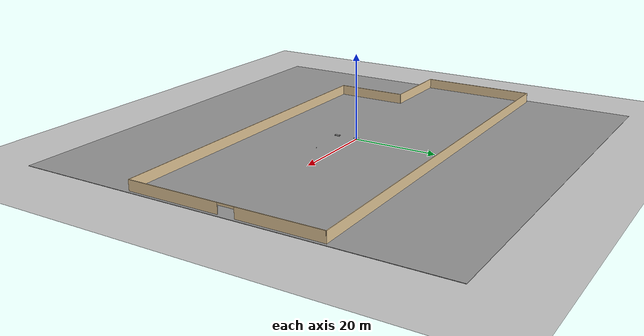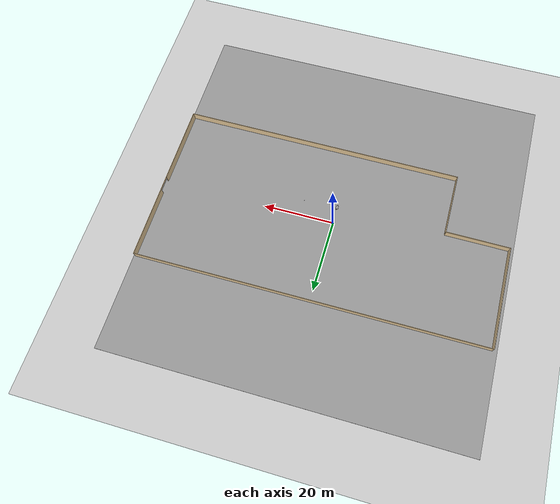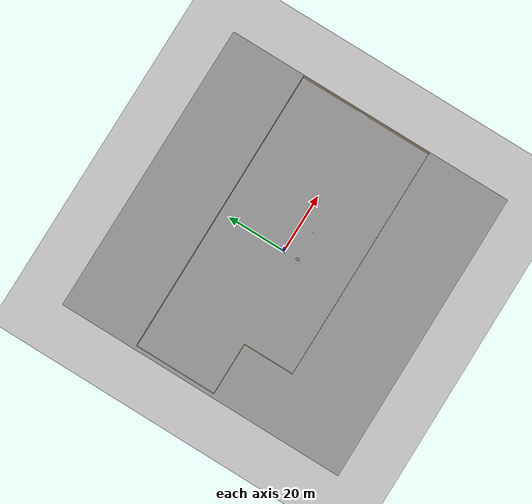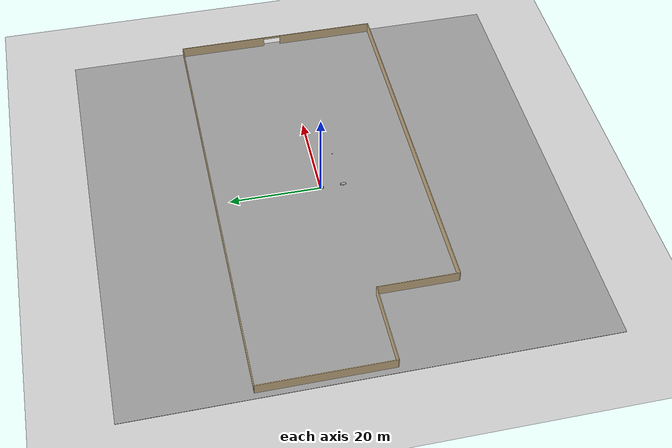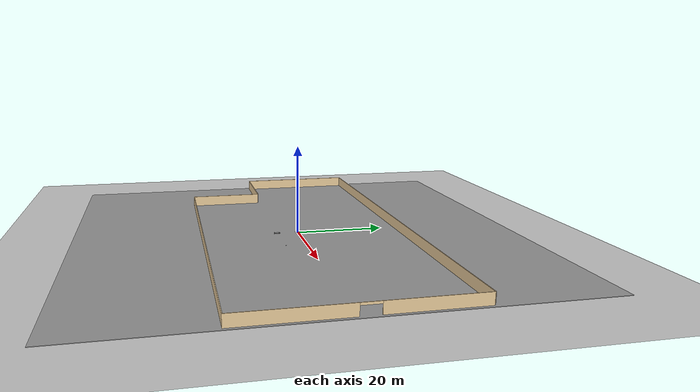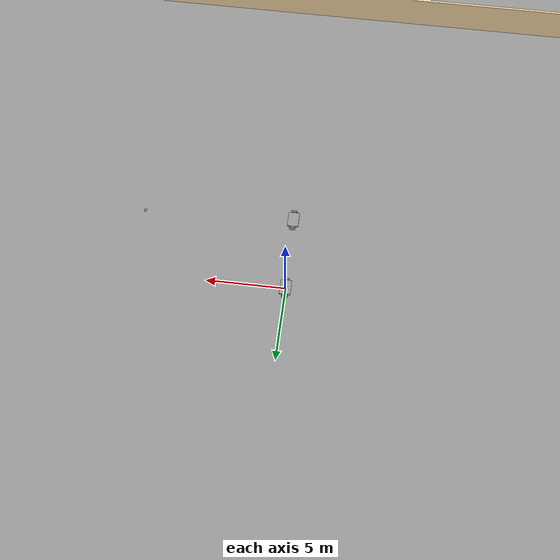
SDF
<sdf version="1.6">
 <world name="default">
  <plugin name="welcome" filename="libwelcome.so"/>
  <light name="sun" type="directional">
   <pose>0 0 10 0 -0 0</pose>
   <diffuse>0.8 0.8 0.8 1</diffuse>
   <specular>0.2 0.2 0.2 1</specular>
   <attenuation>
    <range>1000</range>
    <constant>0.9</constant>
    <linear>0.01</linear>
    <quadratic>0.001</quadratic>
   </attenuation>
   <direction>-0.5 0.1 -0.9</direction>
  </light>
  <model name="ground_plane">
   <static>1</static>
   <link name="link">
    <collision name="collision">
     <geometry><plane><normal>0 0 1</normal><size>100 100</size></plane></geometry>
     <surface>
      <contact><collide_bitmask>65535</collide_bitmask></contact>
      <friction><ode><mu>100</mu><mu2>50</mu2></ode></friction>
     </surface>
    </collision>
    <visual name="visual">
     <cast_shadows>0</cast_shadows>
     <geometry><plane><normal>0 0 1</normal><size>100 100</size></plane></geometry>
     <material>
      <script><uri>file://media/materials/scripts/gazebo.material</uri><name>Gazebo/Grey</name></script>
     </material>
    </visual>
   </link>
  </model>
  <gravity>0 0 -9.8</gravity>
  <magnetic_field>6e-06 2.3e-05 -4.2e-05</magnetic_field>
  <atmosphere type="adiabatic"/>
  <physics name="default_physics" default="0" type="ode">
   <max_step_size>0.001</max_step_size>
   <real_time_factor>1</real_time_factor>
   <real_time_update_rate>1000</real_time_update_rate>
  </physics>
  <scene><ambient>0.4 0.4 0.4 1</ambient><background>0.7 0.7 0.7 1</background><shadows>1</shadows></scene>
  <spherical_coordinates>
   <surface_model>EARTH_WGS84</surface_model>
   <latitude_deg>0</latitude_deg>
   <longitude_deg>0</longitude_deg>
   <elevation>0</elevation>
   <heading_deg>0</heading_deg>
  </spherical_coordinates>
  <model name="ground_plane_0">
   <static>1</static>
   <link name="link">
    <collision name="collision">
     <geometry><plane><normal>0 0 1</normal><size>100 100</size></plane></geometry>
     <surface>
      <contact><collide_bitmask>65535</collide_bitmask></contact>
      <friction><ode><mu>100</mu><mu2>50</mu2></ode></friction>
     </surface>
    </collision>
    <visual name="visual">
     <cast_shadows>0</cast_shadows>
     <geometry><plane><normal>0 0 1</normal><size>100 100</size></plane></geometry>
     <material>
      <script><uri>file://media/materials/scripts/gazebo.material</uri><name>Gazebo/Grey</name></script>
     </material>
    </visual>
   </link>
   <pose>0.006173 -0.585683 0 0 -0 0</pose>
  </model>
  <model name="siteMape">
   <pose>0.335515 0.6096 0 0 -0 0</pose>
   <link name="Wall_0">
    <collision name="Wall_0_Collision">
     <geometry><box><size>98.1005 0.15 2.5</size></box></geometry>
     <pose>0 0 1.25 0 -0 0</pose>
    </collision>
    <visual name="Wall_0_Visual">
     <pose>0 0 1.25 0 -0 0</pose>
     <geometry><box><size>98.1005 0.15 2.5</size></box></geometry>
     <material>
      <script><uri>file://media/materials/scripts/gazebo.material</uri><name>Gazebo/Grey</name></script>
      <ambient>0.921569 0.807843 0.615686 1</ambient>
     </material>
     <meta><layer>0</layer></meta>
    </visual>
    <pose>0 22.647 0 0 -0 0.003124</pose>
   </link>
   <link name="Wall_1">
    <pose>48.9749 -0.000115 0 0 0 -1.5708</pose>
    <visual name="Wall_1_Visual_0">
     <pose>-12.9834 0 1.25 0 -0 0</pose>
     <geometry><box><size>19.7831 0.15 2.5</size></box></geometry>
     <material>
      <script><uri>file://media/materials/scripts/gazebo.material</uri><name>Gazebo/Grey</name></script>
      <ambient>0.921569 0.807843 0.615686 1</ambient>
     </material>
     <meta><layer>0</layer></meta>
    </visual>
    <collision name="Wall_1_Collision_0">
     <geometry><box><size>19.7831 0.15 2.5</size></box></geometry>
     <pose>-12.9834 0 1.25 0 -0 0</pose>
    </collision>
    <visual name="Wall_1_Visual_1">
     <pose>11.8416 0 1.25 0 -0 0</pose>
     <geometry><box><size>22.0669 0.15 2.5</size></box></geometry>
     <material>
      <script><uri>file://media/materials/scripts/gazebo.material</uri><name>Gazebo/Grey</name></script>
      <ambient>0.921569 0.807843 0.615686 1</ambient>
     </material>
     <meta><layer>0</layer></meta>
    </visual>
    <collision name="Wall_1_Collision_1">
     <geometry><box><size>22.0669 0.15 2.5</size></box></geometry>
     <pose>11.8416 0 1.25 0 -0 0</pose>
    </collision>
    <visual name="Wall_1_Visual_2">
     <pose>-1.14186 0 2.25 0 -0 0</pose>
     <geometry><box><size>3.9 0.15 0.5</size></box></geometry>
     <material>
      <script><uri>file://media/materials/scripts/gazebo.material</uri><name>Gazebo/Grey</name></script>
      <ambient>0.921569 0.807843 0.615686 1</ambient>
     </material>
     <meta><layer>0</layer></meta>
    </visual>
    <collision name="Wall_1_Collision_2">
     <geometry><box><size>3.9 0.15 0.5</size></box></geometry>
     <pose>-1.14186 0 2.25 0 -0 0</pose>
    </collision>
   </link>
   <link name="Wall_2">
    <collision name="Wall_2_Collision">
     <geometry><box><size>80.25 0.15 2.5</size></box></geometry>
     <pose>0 0 1.25 0 -0 0</pose>
    </collision>
    <visual name="Wall_2_Visual">
     <pose>0 0 1.25 0 -0 0</pose>
     <geometry><box><size>80.25 0.15 2.5</size></box></geometry>
     <material>
      <script><uri>file://media/materials/scripts/gazebo.material</uri><name>Gazebo/Grey</name></script>
      <ambient>0.921569 0.807843 0.615686 1</ambient>
     </material>
     <meta><layer>0</layer></meta>
    </visual>
    <pose>8.92477 -22.8002 0 0 -0 3.14159</pose>
   </link>
   <link name="Wall_3">
    <collision name="Wall_3_Collision">
     <geometry><box><size>17.5 0.15 2.5</size></box></geometry>
     <pose>0 0 1.25 0 -0 0</pose>
    </collision>
    <visual name="Wall_3_Visual">
     <pose>0 0 1.25 0 -0 0</pose>
     <geometry><box><size>17.5 0.15 2.5</size></box></geometry>
     <material>
      <script><uri>file://media/materials/scripts/gazebo.material</uri><name>Gazebo/Grey</name></script>
      <ambient>0.921569 0.807843 0.615686 1</ambient>
     </material>
     <meta><layer>0</layer></meta>
    </visual>
    <pose>-31.1252 -14.1252 0 0 -0 1.5708</pose>
   </link>
   <link name="Wall_4">
    <collision name="Wall_4_Collision">
     <geometry><box><size>18 0.15 2.5</size></box></geometry>
     <pose>0 0 1.25 0 -0 0</pose>
    </collision>
    <visual name="Wall_4_Visual">
     <pose>0 0 1.25 0 -0 0</pose>
     <geometry><box><size>18 0.15 2.5</size></box></geometry>
     <material>
      <script><uri>file://media/materials/scripts/gazebo.material</uri><name>Gazebo/Grey</name></script>
      <ambient>0.921569 0.807843 0.615686 1</ambient>
     </material>
     <meta><layer>0</layer></meta>
    </visual>
    <pose>-40.0501 -5.45012 0 0 -0 3.14158</pose>
   </link>
   <link name="Wall_5">
    <collision name="Wall_5_Collision">
     <geometry><box><size>28.094 0.15 2.5</size></box></geometry>
     <pose>0 0 1.25 0 -0 0</pose>
    </collision>
    <visual name="Wall_5_Visual">
     <pose>0 0 1.25 0 -0 0</pose>
     <geometry><box><size>28.094 0.15 2.5</size></box></geometry>
     <material>
      <script><uri>file://media/materials/scripts/gazebo.material</uri><name>Gazebo/Grey</name></script>
      <ambient>0.921569 0.807843 0.615686 1</ambient>
     </material>
     <meta><layer>0</layer></meta>
    </visual>
    <pose>-48.975 8.52202 0 0 -0 1.5708</pose>
   </link>
   <static>1</static>
  </model>
  <model name="myRobot">
   <link name="link_0">
    <pose>-0.028417 1.25131 0.2 0 -0 0</pose>
    <inertial>
     <mass>1</mass>
     <inertia>
      <ixx>0.166667</ixx>
      <ixy>0</ixy>
      <ixz>0</ixz>
      <iyy>0.166667</iyy>
      <iyz>0</iyz>
      <izz>0.166667</izz>
     </inertia>
    </inertial>
    <visual name="visual">
     <geometry><box><size>0.7 1 0.1</size></box></geometry>
     <material>
      <lighting>1</lighting>
      <script><uri>file://media/materials/scripts/gazebo.material</uri><name>Gazebo/Grey</name></script>
      <shader type="pixel"><normal_map>__default__</normal_map></shader>
      <ambient>0.3 0.3 0.3 1</ambient>
      <diffuse>0.7 0.7 0.7 1</diffuse>
      <specular>0.01 0.01 0.01 1</specular>
      <emissive>0 0 0 1</emissive>
     </material>
    </visual>
    <collision name="collision">
     <geometry><box><size>0.7 1 0.1</size></box></geometry>
     <surface>
      <friction>
       <ode><mu>1</mu><mu2>1</mu2><fdir1>0 0 0</fdir1><slip1>0</slip1><slip2>0</slip2></ode>
       <torsional>
        <coefficient>1</coefficient>
        <patch_radius>0</patch_radius>
        <surface_radius>0</surface_radius>
        <use_patch_radius>1</use_patch_radius>
        <ode><slip>0</slip></ode>
       </torsional>
      </friction>
      <bounce><restitution_coefficient>0</restitution_coefficient><threshold>1e+06</threshold></bounce>
      <contact>
       <collide_without_contact>0</collide_without_contact>
       <collide_without_contact_bitmask>1</collide_without_contact_bitmask>
       <collide_bitmask>1</collide_bitmask>
       <ode>
        <soft_cfm>0</soft_cfm>
        <soft_erp>0.2</soft_erp>
        <kp>1e+13</kp>
        <kd>1</kd>
        <max_vel>0.01</max_vel>
        <min_depth>0</min_depth>
       </ode>
       <bullet>
        <split_impulse>1</split_impulse>
        <split_impulse_penetration_threshold>-0.01</split_impulse_penetration_threshold>
        <soft_cfm>0</soft_cfm>
        <soft_erp>0.2</soft_erp>
        <kp>1e+13</kp>
        <kd>1</kd>
       </bullet>
      </contact>
     </surface>
    </collision>
   </link>
   <link name="link_1">
    <pose>-0.028417 1.89133 0.2 1.5707 -0 0</pose>
    <inertial>
     <mass>1</mass>
     <inertia><ixx>0.145833</ixx><ixy>0</ixy><ixz>0</ixz><iyy>0.145833</iyy><iyz>0</iyz><izz>0.125</izz></inertia>
    </inertial>
    <visual name="visual">
     <geometry><cylinder><radius>0.2</radius><length>0.1</length></cylinder></geometry>
     <material>
      <lighting>1</lighting>
      <script><uri>file://media/materials/scripts/gazebo.material</uri><name>Gazebo/Grey</name></script>
      <shader type="pixel"><normal_map>__default__</normal_map></shader>
      <ambient>0.3 0.3 0.3 1</ambient>
      <diffuse>0.7 0.7 0.7 1</diffuse>
      <specular>0.01 0.01 0.01 1</specular>
      <emissive>0 0 0 1</emissive>
     </material>
    </visual>
    <collision name="collision">
     <geometry><cylinder><radius>0.2</radius><length>0.1</length></cylinder></geometry>
     <surface>
      <friction>
       <ode><mu>1</mu><mu2>1</mu2><fdir1>0 0 0</fdir1><slip1>0</slip1><slip2>0</slip2></ode>
       <torsional>
        <coefficient>1</coefficient>
        <patch_radius>0</patch_radius>
        <surface_radius>0</surface_radius>
        <use_patch_radius>1</use_patch_radius>
        <ode><slip>0</slip></ode>
       </torsional>
      </friction>
      <bounce><restitution_coefficient>0</restitution_coefficient><threshold>1e+06</threshold></bounce>
      <contact>
       <collide_without_contact>0</collide_without_contact>
       <collide_without_contact_bitmask>1</collide_without_contact_bitmask>
       <collide_bitmask>1</collide_bitmask>
       <ode>
        <soft_cfm>0</soft_cfm>
        <soft_erp>0.2</soft_erp>
        <kp>1e+13</kp>
        <kd>1</kd>
        <max_vel>0.01</max_vel>
        <min_depth>0</min_depth>
       </ode>
       <bullet>
        <split_impulse>1</split_impulse>
        <split_impulse_penetration_threshold>-0.01</split_impulse_penetration_threshold>
        <soft_cfm>0</soft_cfm>
        <soft_erp>0.2</soft_erp>
        <kp>1e+13</kp>
        <kd>1</kd>
       </bullet>
      </contact>
     </surface>
    </collision>
   </link>
   <link name="link_1_clone">
    <pose>-0.028417 0.701288 0.2 1.5707 -0 0</pose>
    <inertial>
     <mass>1</mass>
     <inertia><ixx>0.145833</ixx><ixy>0</ixy><ixz>0</ixz><iyy>0.145833</iyy><iyz>0</iyz><izz>0.125</izz></inertia>
    </inertial>
    <visual name="visual">
     <geometry><cylinder><radius>0.2</radius><length>0.1</length></cylinder></geometry>
     <material>
      <lighting>1</lighting>
      <script><uri>file://media/materials/scripts/gazebo.material</uri><name>Gazebo/Grey</name></script>
      <shader type="pixel"><normal_map>__default__</normal_map></shader>
      <ambient>0.3 0.3 0.3 1</ambient>
      <diffuse>0.7 0.7 0.7 1</diffuse>
      <specular>0.01 0.01 0.01 1</specular>
      <emissive>0 0 0 1</emissive>
     </material>
    </visual>
    <collision name="collision">
     <geometry><cylinder><radius>0.2</radius><length>0.1</length></cylinder></geometry>
     <surface>
      <friction>
       <ode><mu>1</mu><mu2>1</mu2><fdir1>0 0 0</fdir1><slip1>0</slip1><slip2>0</slip2></ode>
       <torsional>
        <coefficient>1</coefficient>
        <patch_radius>0</patch_radius>
        <surface_radius>0</surface_radius>
        <use_patch_radius>1</use_patch_radius>
        <ode><slip>0</slip></ode>
       </torsional>
      </friction>
      <bounce><restitution_coefficient>0</restitution_coefficient><threshold>1e+06</threshold></bounce>
      <contact>
       <collide_without_contact>0</collide_without_contact>
       <collide_without_contact_bitmask>1</collide_without_contact_bitmask>
       <collide_bitmask>1</collide_bitmask>
       <ode>
        <soft_cfm>0</soft_cfm>
        <soft_erp>0.2</soft_erp>
        <kp>1e+13</kp>
        <kd>1</kd>
        <max_vel>0.01</max_vel>
        <min_depth>0</min_depth>
       </ode>
       <bullet>
        <split_impulse>1</split_impulse>
        <split_impulse_penetration_threshold>-0.01</split_impulse_penetration_threshold>
        <soft_cfm>0</soft_cfm>
        <soft_erp>0.2</soft_erp>
        <kp>1e+13</kp>
        <kd>1</kd>
       </bullet>
      </contact>
     </surface>
    </collision>
   </link>
   <model name="myRobot">
    <link name="link_0">
     <pose>0 -0.03 0 0 -0 0</pose>
     <inertial>
      <mass>1</mass>
      <inertia>
       <ixx>0.166667</ixx>
       <ixy>0</ixy>
       <ixz>0</ixz>
       <iyy>0.166667</iyy>
       <iyz>0</iyz>
       <izz>0.166667</izz>
      </inertia>
     </inertial>
     <visual name="visual">
      <geometry><box><size>0.7 1 0.1</size></box></geometry>
      <material>
       <lighting>1</lighting>
       <script><uri>file://media/materials/scripts/gazebo.material</uri><name>Gazebo/Grey</name></script>
       <shader type="pixel"><normal_map>__default__</normal_map></shader>
       <ambient>0.3 0.3 0.3 1</ambient>
       <diffuse>0.7 0.7 0.7 1</diffuse>
       <specular>0.01 0.01 0.01 1</specular>
       <emissive>0 0 0 1</emissive>
      </material>
     </visual>
     <collision name="collision">
      <geometry><box><size>0.7 1 0.1</size></box></geometry>
      <surface>
       <friction>
        <ode><mu>1</mu><mu2>1</mu2><fdir1>0 0 0</fdir1><slip1>0</slip1><slip2>0</slip2></ode>
        <torsional>
         <coefficient>1</coefficient>
         <patch_radius>0</patch_radius>
         <surface_radius>0</surface_radius>
         <use_patch_radius>1</use_patch_radius>
         <ode><slip>0</slip></ode>
        </torsional>
       </friction>
       <bounce><restitution_coefficient>0</restitution_coefficient><threshold>1e+06</threshold></bounce>
       <contact>
        <collide_without_contact>0</collide_without_contact>
        <collide_without_contact_bitmask>1</collide_without_contact_bitmask>
        <collide_bitmask>1</collide_bitmask>
        <ode>
         <soft_cfm>0</soft_cfm>
         <soft_erp>0.2</soft_erp>
         <kp>1e+13</kp>
         <kd>1</kd>
         <max_vel>0.01</max_vel>
         <min_depth>0</min_depth>
        </ode>
        <bullet>
         <split_impulse>1</split_impulse>
         <split_impulse_penetration_threshold>-0.01</split_impulse_penetration_threshold>
         <soft_cfm>0</soft_cfm>
         <soft_erp>0.2</soft_erp>
         <kp>1e+13</kp>
         <kd>1</kd>
        </bullet>
       </contact>
      </surface>
     </collision>
    </link>
    <link name="link_1">
     <pose>0 0.610019 0 1.5707 -0 0</pose>
     <inertial>
      <mass>1</mass>
      <inertia><ixx>0.145833</ixx><ixy>0</ixy><ixz>0</ixz><iyy>0.145833</iyy><iyz>0</iyz><izz>0.125</izz></inertia>
     </inertial>
     <visual name="visual">
      <geometry><cylinder><radius>0.2</radius><length>0.1</length></cylinder></geometry>
      <material>
       <lighting>1</lighting>
       <script><uri>file://media/materials/scripts/gazebo.material</uri><name>Gazebo/Grey</name></script>
       <shader type="pixel"><normal_map>__default__</normal_map></shader>
       <ambient>0.3 0.3 0.3 1</ambient>
       <diffuse>0.7 0.7 0.7 1</diffuse>
       <specular>0.01 0.01 0.01 1</specular>
       <emissive>0 0 0 1</emissive>
      </material>
     </visual>
     <collision name="collision">
      <geometry><cylinder><radius>0.2</radius><length>0.1</length></cylinder></geometry>
      <surface>
       <friction>
        <ode><mu>1</mu><mu2>1</mu2><fdir1>0 0 0</fdir1><slip1>0</slip1><slip2>0</slip2></ode>
        <torsional>
         <coefficient>1</coefficient>
         <patch_radius>0</patch_radius>
         <surface_radius>0</surface_radius>
         <use_patch_radius>1</use_patch_radius>
         <ode><slip>0</slip></ode>
        </torsional>
       </friction>
       <bounce><restitution_coefficient>0</restitution_coefficient><threshold>1e+06</threshold></bounce>
       <contact>
        <collide_without_contact>0</collide_without_contact>
        <collide_without_contact_bitmask>1</collide_without_contact_bitmask>
        <collide_bitmask>1</collide_bitmask>
        <ode>
         <soft_cfm>0</soft_cfm>
         <soft_erp>0.2</soft_erp>
         <kp>1e+13</kp>
         <kd>1</kd>
         <max_vel>0.01</max_vel>
         <min_depth>0</min_depth>
        </ode>
        <bullet>
         <split_impulse>1</split_impulse>
         <split_impulse_penetration_threshold>-0.01</split_impulse_penetration_threshold>
         <soft_cfm>0</soft_cfm>
         <soft_erp>0.2</soft_erp>
         <kp>1e+13</kp>
         <kd>1</kd>
        </bullet>
       </contact>
      </surface>
     </collision>
    </link>
    <link name="link_1_clone">
     <pose>0 -0.580019 0 1.5707 -0 0</pose>
     <inertial>
      <mass>1</mass>
      <inertia><ixx>0.145833</ixx><ixy>0</ixy><ixz>0</ixz><iyy>0.145833</iyy><iyz>0</iyz><izz>0.125</izz></inertia>
     </inertial>
     <visual name="visual">
      <geometry><cylinder><radius>0.2</radius><length>0.1</length></cylinder></geometry>
      <material>
       <lighting>1</lighting>
       <script><uri>file://media/materials/scripts/gazebo.material</uri><name>Gazebo/Grey</name></script>
       <shader type="pixel"><normal_map>__default__</normal_map></shader>
       <ambient>0.3 0.3 0.3 1</ambient>
       <diffuse>0.7 0.7 0.7 1</diffuse>
       <specular>0.01 0.01 0.01 1</specular>
       <emissive>0 0 0 1</emissive>
      </material>
     </visual>
     <collision name="collision">
      <geometry><cylinder><radius>0.2</radius><length>0.1</length></cylinder></geometry>
      <surface>
       <friction>
        <ode><mu>1</mu><mu2>1</mu2><fdir1>0 0 0</fdir1><slip1>0</slip1><slip2>0</slip2></ode>
        <torsional>
         <coefficient>1</coefficient>
         <patch_radius>0</patch_radius>
         <surface_radius>0</surface_radius>
         <use_patch_radius>1</use_patch_radius>
         <ode><slip>0</slip></ode>
        </torsional>
       </friction>
       <bounce><restitution_coefficient>0</restitution_coefficient><threshold>1e+06</threshold></bounce>
       <contact>
        <collide_without_contact>0</collide_without_contact>
        <collide_without_contact_bitmask>1</collide_without_contact_bitmask>
        <collide_bitmask>1</collide_bitmask>
        <ode>
         <soft_cfm>0</soft_cfm>
         <soft_erp>0.2</soft_erp>
         <kp>1e+13</kp>
         <kd>1</kd>
         <max_vel>0.01</max_vel>
         <min_depth>0</min_depth>
        </ode>
        <bullet>
         <split_impulse>1</split_impulse>
         <split_impulse_penetration_threshold>-0.01</split_impulse_penetration_threshold>
         <soft_cfm>0</soft_cfm>
         <soft_erp>0.2</soft_erp>
         <kp>1e+13</kp>
         <kd>1</kd>
        </bullet>
       </contact>
      </surface>
     </collision>
    </link>
    <joint name="link_0_JOINT_0" type="revolute">
     <parent>link_0</parent>
     <child>link_1</child>
     <axis>
      <xyz>0 0 1</xyz>
      <use_parent_model_frame>0</use_parent_model_frame>
      <limit>
       <lower>-1.79769e+308</lower>
       <upper>1.79769e+308</upper>
       <effort>-1</effort>
       <velocity>-1</velocity>
      </limit>
      <dynamics>
       <spring_reference>0</spring_reference>
       <spring_stiffness>0</spring_stiffness>
       <damping>0</damping>
       <friction>0</friction>
      </dynamics>
     </axis>
     <physics>
      <ode><limit><cfm>0</cfm><erp>0.2</erp></limit><suspension><cfm>0</cfm><erp>0.2</erp></suspension></ode>
     </physics>
    </joint>
    <joint name="link_0_JOINT_1" type="revolute">
     <parent>link_0</parent>
     <child>link_1_clone</child>
     <axis>
      <xyz>0 0 1</xyz>
      <use_parent_model_frame>0</use_parent_model_frame>
      <limit>
       <lower>-1.79769e+308</lower>
       <upper>1.79769e+308</upper>
       <effort>-1</effort>
       <velocity>-1</velocity>
      </limit>
      <dynamics>
       <spring_reference>0</spring_reference>
       <spring_stiffness>0</spring_stiffness>
       <damping>0</damping>
      </dynamics>
     </axis>
     <physics>
      <ode><limit><cfm>0</cfm><erp>0.2</erp></limit><suspension><cfm>0</cfm><erp>0.2</erp></suspension></ode>
     </physics>
    </joint>
    <static>0</static>
    <pose>0.085252 -3.72392 0.2 0 -0 0</pose>
   </model>
   <joint name="link_0_JOINT_0" type="revolute">
    <parent>link_0</parent>
    <child>link_1</child>
    <axis>
     <xyz>0 0 1</xyz>
     <use_parent_model_frame>0</use_parent_model_frame>
     <limit>
      <lower>-1.79769e+308</lower>
      <upper>1.79769e+308</upper>
      <effort>-1</effort>
      <velocity>-1</velocity>
     </limit>
     <dynamics>
      <spring_reference>0</spring_reference>
      <spring_stiffness>0</spring_stiffness>
      <damping>0</damping>
      <friction>0</friction>
     </dynamics>
    </axis>
    <physics>
     <ode><limit><cfm>0</cfm><erp>0.2</erp></limit><suspension><cfm>0</cfm><erp>0.2</erp></suspension></ode>
    </physics>
   </joint>
   <joint name="link_0_JOINT_1" type="revolute">
    <parent>link_0</parent>
    <child>link_1_clone</child>
    <axis>
     <xyz>0 0 1</xyz>
     <use_parent_model_frame>0</use_parent_model_frame>
     <limit>
      <lower>-1.79769e+308</lower>
      <upper>1.79769e+308</upper>
      <effort>-1</effort>
      <velocity>-1</velocity>
     </limit>
     <dynamics>
      <spring_reference>0</spring_reference>
      <spring_stiffness>0</spring_stiffness>
      <damping>0</damping>
     </dynamics>
    </axis>
    <physics>
     <ode><limit><cfm>0</cfm><erp>0.2</erp></limit><suspension><cfm>0</cfm><erp>0.2</erp></suspension></ode>
    </physics>
   </joint>
   <static>0</static>
   <pose>0.028417 -1.25131 5e-06 0 -0 0</pose>
  </model>
  <model name="my_ball">
   <link name="link_0">
    <inertial>
     <mass>1</mass>
     <inertia><ixx>0.1</ixx><ixy>0</ixy><ixz>0</ixz><iyy>0.1</iyy><iyz>0</iyz><izz>0.1</izz></inertia>
    </inertial>
    <visual name="visual">
     <geometry><sphere><radius>0.1</radius></sphere></geometry>
     <material>
      <lighting>1</lighting>
      <script><uri>file://media/materials/scripts/gazebo.material</uri><name>Gazebo/Grey</name></script>
      <shader type="pixel"><normal_map>__default__</normal_map></shader>
      <ambient>1 1 1 1</ambient>
      <diffuse>1 1 1 1</diffuse>
      <specular>1 1 1 1</specular>
      <emissive>1 1 1 1</emissive>
     </material>
    </visual>
    <collision name="collision">
     <geometry><sphere><radius>0.1</radius></sphere></geometry>
     <surface>
      <friction>
       <ode><mu>1</mu><mu2>1</mu2><fdir1>0 0 0</fdir1><slip1>0</slip1><slip2>0</slip2></ode>
       <torsional>
        <coefficient>1</coefficient>
        <patch_radius>0</patch_radius>
        <surface_radius>0</surface_radius>
        <use_patch_radius>1</use_patch_radius>
        <ode><slip>0</slip></ode>
       </torsional>
      </friction>
      <bounce><restitution_coefficient>0</restitution_coefficient><threshold>1e+06</threshold></bounce>
      <contact>
       <collide_without_contact>0</collide_without_contact>
       <collide_without_contact_bitmask>1</collide_without_contact_bitmask>
       <collide_bitmask>1</collide_bitmask>
       <ode>
        <soft_cfm>0</soft_cfm>
        <soft_erp>0.2</soft_erp>
        <kp>1e+13</kp>
        <kd>1</kd>
        <max_vel>0.01</max_vel>
        <min_depth>0</min_depth>
       </ode>
       <bullet>
        <split_impulse>1</split_impulse>
        <split_impulse_penetration_threshold>-0.01</split_impulse_penetration_threshold>
        <soft_cfm>0</soft_cfm>
        <soft_erp>0.2</soft_erp>
        <kp>1e+13</kp>
        <kd>1</kd>
       </bullet>
      </contact>
     </surface>
    </collision>
   </link>
   <static>0</static>
   <pose>9.61938 -4.64647 0.09999 0 -0 0</pose>
  </model>
 </world>
</sdf>
